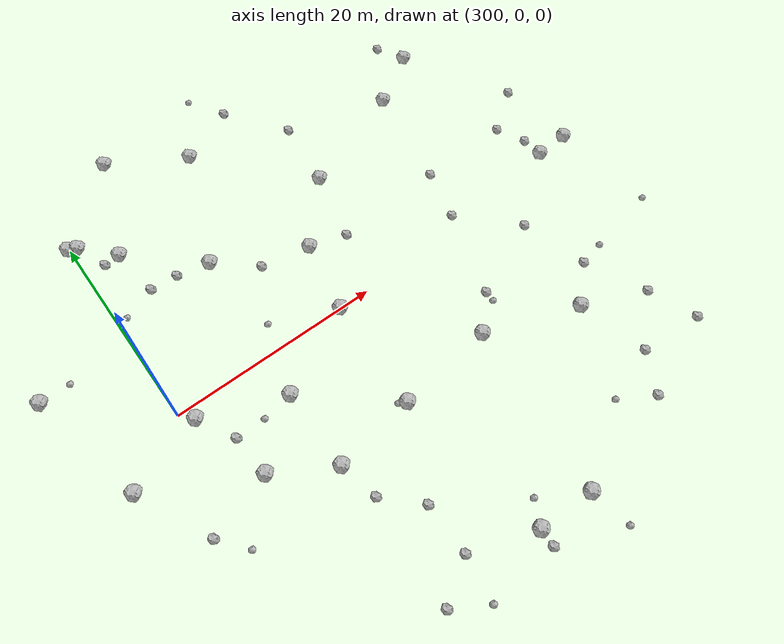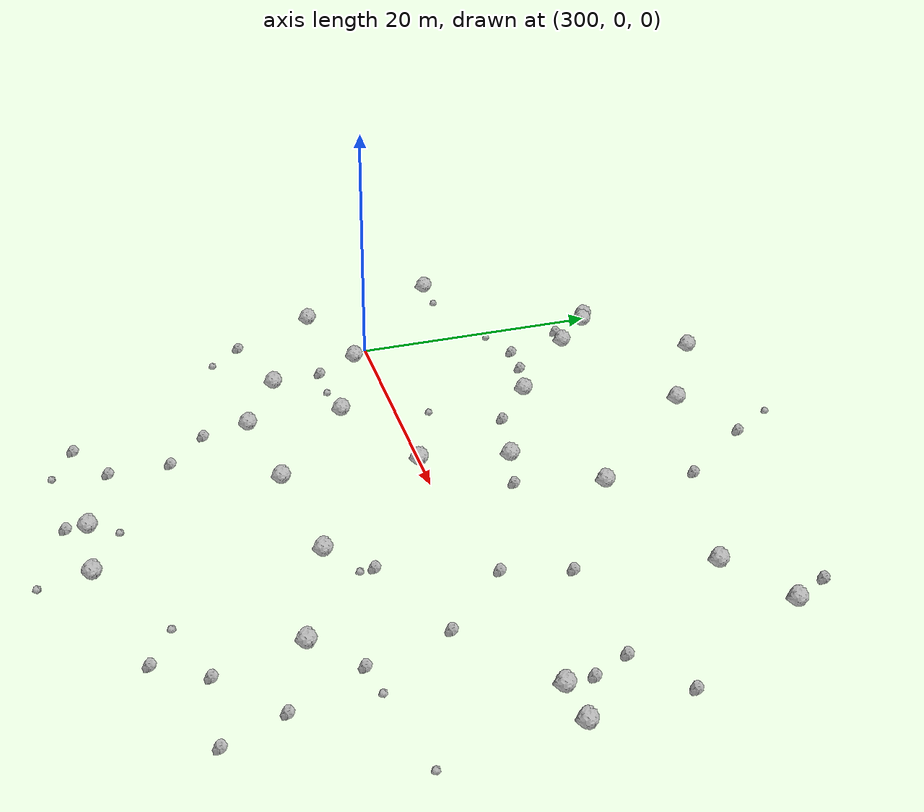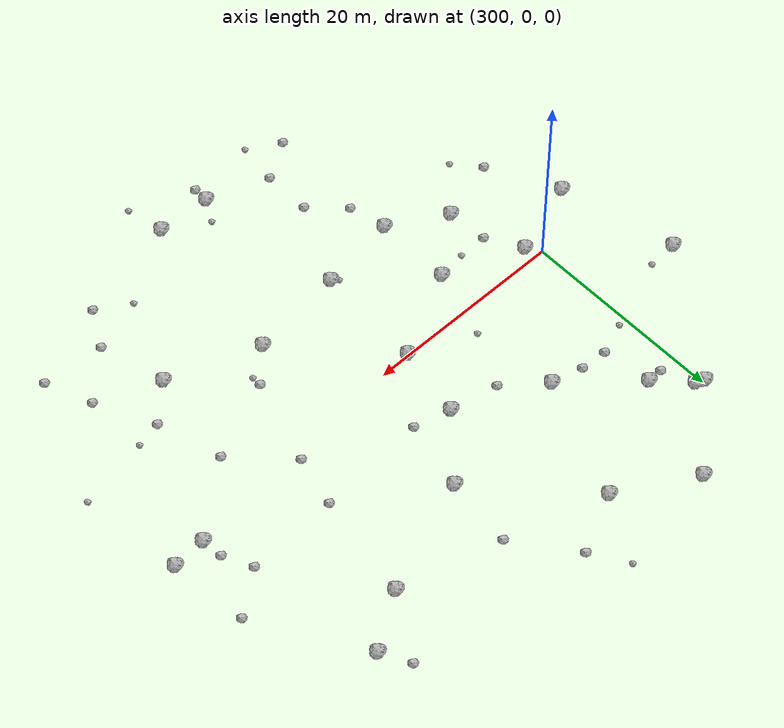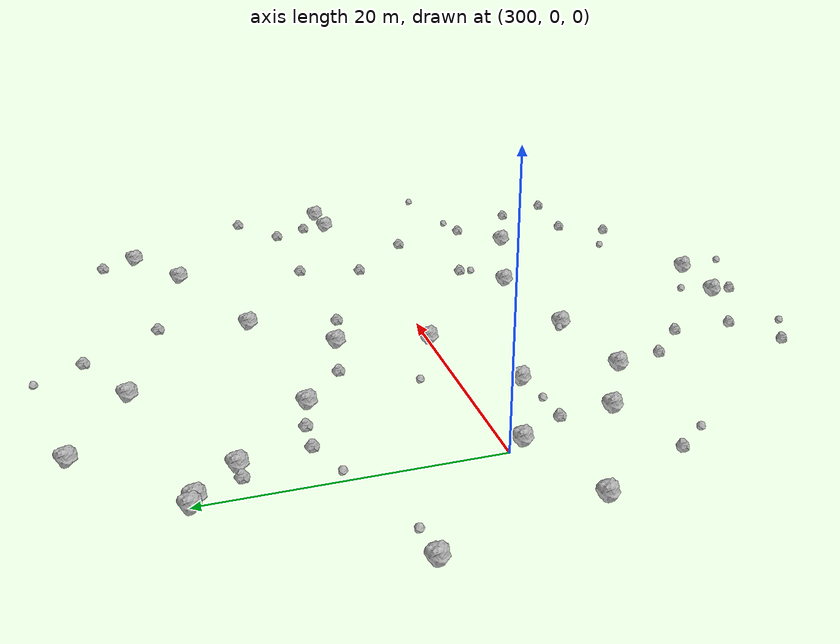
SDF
<sdf version="1.6">
 <world name="default">
  <include><uri>model://sun</uri></include>
  <model name="rock1_8_3">
   <include><uri>model://rock1</uri><pose>303.28985904546846 -8.689526687637773 0.5 0 0 0</pose></include>
  </model>
  <model name="rock1_8_4">
   <include><uri>model://rock1</uri><pose>346.456826999347 2.3679340671611513 0.5 0 0 0</pose></include>
  </model>
  <model name="rock1_8_5">
   <include><uri>model://rock1</uri><pose>323.6169132797867 12.715088699087545 0.5 0 0 0</pose></include>
  </model>
  <model name="rock1_8_6">
   <include><uri>model://rock1</uri><pose>317.01031325247885 -0.019225416233275894 0.5 0 0 0</pose></include>
  </model>
  <model name="rock1_8_7">
   <include><uri>model://rock1</uri><pose>308.7597423779897 -4.220770878602615 0.5 0 0 0</pose></include>
  </model>
  <model name="rock1_8_8">
   <include><uri>model://rock1</uri><pose>334.5399630312802 16.873989666699906 0.5 0 0 0</pose></include>
  </model>
  <model name="rock1_8_9">
   <include><uri>model://rock1</uri><pose>301.1206798855017 -1.2472931442840647 0.5 0 0 0</pose></include>
  </model>
  <model name="rock1_8_10">
   <include><uri>model://rock1</uri><pose>300.75610649606955 19.645707724705815 0.5 0 0 0</pose></include>
  </model>
  <model name="rock1_8_11">
   <include><uri>model://rock1</uri><pose>291.11119080098405 7.7847176989162605 0.5 0 0 0</pose></include>
  </model>
  <model name="rock1_8_12">
   <include><uri>model://rock1</uri><pose>325.7183663864876 -9.572879238399217 0.5 0 0 0</pose></include>
  </model>
  <model name="rock1_8_13">
   <include><uri>model://rock1</uri><pose>318.4135523739767 6.910887568110304 0.5 0 0 0</pose></include>
  </model>
  <model name="rock1_8_14">
   <include><uri>model://rock1</uri><pose>318.4785196329025 -25.35780111866849 0.5 0 0 0</pose></include>
  </model>
  <model name="rock1_8_15">
   <include><uri>model://rock1</uri><pose>307.3336450905876 26.768692025842782 0.5 0 0 0</pose></include>
  </model>
  <model name="rock1_8_16">
   <include><uri>model://rock1</uri><pose>299.9609712631729 20.011011299669775 0.5 0 0 0</pose></include>
  </model>
  <model name="rock1_8_17">
   <include><uri>model://rock1</uri><pose>339.77794806019074 20.214157357310974 0.5 0 0 0</pose></include>
  </model>
  <model name="rock1_8_18">
   <include><uri>model://rock1</uri><pose>293.846427414662 -3.7264740153588676 0.5 0 0 0</pose></include>
  </model>
  <model name="rock1_8_19">
   <include><uri>model://rock1</uri><pose>308.71481006438074 -11.82521083352303 0.5 0 0 0</pose></include>
  </model>
  <model name="rock1_8_20">
   <include><uri>model://rock1</uri><pose>309.95171001877117 10.954821964363006 0.5 0 0 0</pose></include>
  </model>
  <model name="rock1_8_21">
   <include><uri>model://rock1</uri><pose>316.4367055272259 -10.69969199504548 0.5 0 0 0</pose></include>
  </model>
  <model name="rock1_8_22">
   <include><uri>model://rock1</uri><pose>303.57492648973204 16.68816924514646 0.5 0 0 0</pose></include>
  </model>
  <model name="rock1_8_23">
   <include><uri>model://rock1</uri><pose>323.7627196904888 -25.563955190128524 0.5 0 0 0</pose></include>
  </model>
  <model name="rock1_8_24">
   <include><uri>model://rock1</uri><pose>334.6544550753169 -12.732755524808248 0.5 0 0 0</pose></include>
  </model>
  <model name="rock1_8_25">
   <include><uri>model://rock1</uri><pose>343.1104031140641 2.1503411707606688 0.5 0 0 0</pose></include>
  </model>
  <model name="rock1_8_26">
   <include><uri>model://rock1</uri><pose>314.649611590872 22.539701836201125 0.5 0 0 0</pose></include>
  </model>
  <model name="rock2_8_0">
   <include><uri>model://rock2</uri><pose>336.24490299376134 -3.273822246453232 0.3 0 0 0</pose></include>
  </model>
  <model name="rock2_8_1">
   <include><uri>model://rock2</uri><pose>320.2432510193605 25.28812859689264 0.3 0 0 0</pose></include>
  </model>
  <model name="rock2_8_2">
   <include><uri>model://rock2</uri><pose>302.9599628135484 -4.687459506385732 0.3 0 0 0</pose></include>
  </model>
  <model name="rock2_8_3">
   <include><uri>model://rock2</uri><pose>342.905595972921 4.255990211575366 0.3 0 0 0</pose></include>
  </model>
  <model name="rock2_8_4">
   <include><uri>model://rock2</uri><pose>338.005147868927 -9.607350182517177 0.3 0 0 0</pose></include>
  </model>
  <model name="rock2_8_5">
   <include><uri>model://rock2</uri><pose>312.4203726779566 -23.273888501457662 0.3 0 0 0</pose></include>
  </model>
  <model name="rock2_8_6">
   <include><uri>model://rock2</uri><pose>331.3629737821333 1.7161702673018553 0.3 0 0 0</pose></include>
  </model>
  <model name="rock2_8_7">
   <include><uri>model://rock2</uri><pose>313.6001024472629 7.853664034169881 0.3 0 0 0</pose></include>
  </model>
  <model name="rock2_8_8">
   <include><uri>model://rock2</uri><pose>342.3717574535765 -19.763237967987504 0.3 0 0 0</pose></include>
  </model>
  <model name="rock2_8_9">
   <include><uri>model://rock2</uri><pose>324.4347042154001 19.563750807041856 0.3 0 0 0</pose></include>
  </model>
  <model name="rock2_8_10">
   <include><uri>model://rock2</uri><pose>309.4319836007384 -15.549948955169297 0.3 0 0 0</pose></include>
  </model>
  <model name="rock2_8_11">
   <include><uri>model://rock2</uri><pose>301.952585301446 16.63965369518035 0.3 0 0 0</pose></include>
  </model>
  <model name="rock2_8_12">
   <include><uri>model://rock2</uri><pose>297.1261835302872 -10.581533774881308 0.3 0 0 0</pose></include>
  </model>
  <model name="rock2_8_13">
   <include><uri>model://rock2</uri><pose>318.3703666997044 -26.950429147869336 0.3 0 0 0</pose></include>
  </model>
  <model name="rock2_8_14">
   <include><uri>model://rock2</uri><pose>345.718591043052 10.026144049037455 0.3 0 0 0</pose></include>
  </model>
  <model name="rock2_8_15">
   <include><uri>model://rock2</uri><pose>338.2950641810694 22.99704008049919 0.3 0 0 0</pose></include>
  </model>
  <model name="rock2_8_16">
   <include><uri>model://rock2</uri><pose>304.1236248507026 11.84469566426165 0.3 0 0 0</pose></include>
  </model>
  <model name="rock2_8_17">
   <include><uri>model://rock2</uri><pose>328.6637533828847 -6.584829592329999 0.3 0 0 0</pose></include>
  </model>
  <model name="rock2_8_18">
   <include><uri>model://rock2</uri><pose>306.7652545929859 11.699250030420224 0.3 0 0 0</pose></include>
  </model>
  <model name="rock2_8_19">
   <include><uri>model://rock2</uri><pose>334.1128618532938 -22.93672557829693 0.3 0 0 0</pose></include>
  </model>
  <model name="rock2_8_20">
   <include><uri>model://rock2</uri><pose>340.67052598517773 -15.241787693732533 0.3 0 0 0</pose></include>
  </model>
  <model name="rock2_8_21">
   <include><uri>model://rock2</uri><pose>321.96819394783284 5.982454368042653 0.3 0 0 0</pose></include>
  </model>
  <model name="rock2_8_22">
   <include><uri>model://rock2</uri><pose>312.45047270411635 -18.54979296329155 0.3 0 0 0</pose></include>
  </model>
  <model name="rock2_8_23">
   <include><uri>model://rock2</uri><pose>332.6693214820051 6.6950946766924275 0.3 0 0 0</pose></include>
  </model>
  <model name="rock2_8_24">
   <include><uri>model://rock2</uri><pose>336.2426897212519 -19.28992418396982 0.3 0 0 0</pose></include>
  </model>
  <model name="rock2_8_25">
   <include><uri>model://rock2</uri><pose>341.60640688280654 7.022465370048721 0.3 0 0 0</pose></include>
  </model>
  <model name="rock2_8_26">
   <include><uri>model://rock2</uri><pose>308.6960365814027 -25.576493547831305 0.3 0 0 0</pose></include>
  </model>
  <model name="rock3_8_0">
   <include><uri>model://rock3</uri><pose>318.0836322581553 28.71182479680882 0.2 0 0 0</pose></include>
  </model>
  <model name="rock3_8_1">
   <include><uri>model://rock3</uri><pose>324.37415917027005 -29.401442244645537 0.2 0 0 0</pose></include>
  </model>
  <model name="rock3_8_2">
   <include><uri>model://rock3</uri><pose>305.7635739118848 -4.7146194460795385 0.2 0 0 0</pose></include>
  </model>
  <model name="rock3_8_3">
   <include><uri>model://rock3</uri><pose>311.7683581164476 -27.443947209776884 0.2 0 0 0</pose></include>
  </model>
  <model name="rock3_8_4">
   <include><uri>model://rock3</uri><pose>328.61202131890724 -7.629806481729823 0.2 0 0 0</pose></include>
  </model>
  <model name="rock3_8_5">
   <include><uri>model://rock3</uri><pose>340.52994684899386 -9.094618303302536 0.2 0 0 0</pose></include>
  </model>
  <model name="rock3_8_6">
   <include><uri>model://rock3</uri><pose>347.59066477973295 -7.717273506758271 0.2 0 0 0</pose></include>
  </model>
  <model name="rock3_8_7">
   <include><uri>model://rock3</uri><pose>299.11601356257904 -13.117501869212497 0.2 0 0 0</pose></include>
  </model>
  <model name="rock3_8_8">
   <include><uri>model://rock3</uri><pose>319.65035548170704 -23.217082284149235 0.2 0 0 0</pose></include>
  </model>
  <model name="rock3_8_9">
   <include><uri>model://rock3</uri><pose>300.96745731224513 10.584005348536245 0.2 0 0 0</pose></include>
  </model>
  <model name="rock3_8_10">
   <include><uri>model://rock3</uri><pose>310.8227027267244 2.5377669595428785 0.2 0 0 0</pose></include>
  </model>
  <model name="rock3_8_11">
   <include><uri>model://rock3</uri><pose>315.7153680767132 -10.318108568694512 0.2 0 0 0</pose></include>
  </model>
  <model name="rock3_8_12">
   <include><uri>model://rock3</uri><pose>330.896435459592 -21.0792544884526 0.2 0 0 0</pose></include>
  </model>
  <model name="rock3_8_13">
   <include><uri>model://rock3</uri><pose>293.9198693436372 7.882423558851748 0.2 0 0 0</pose></include>
  </model>
 </world>
</sdf>
